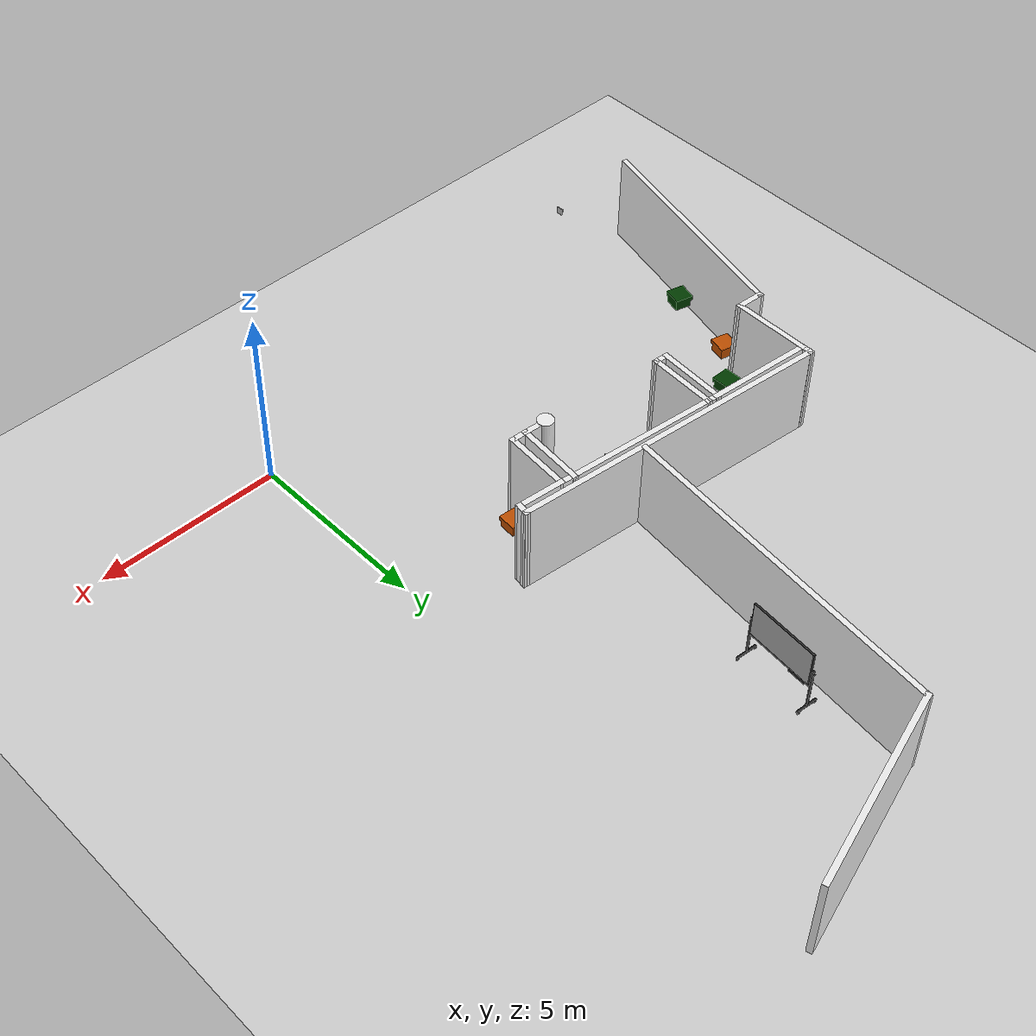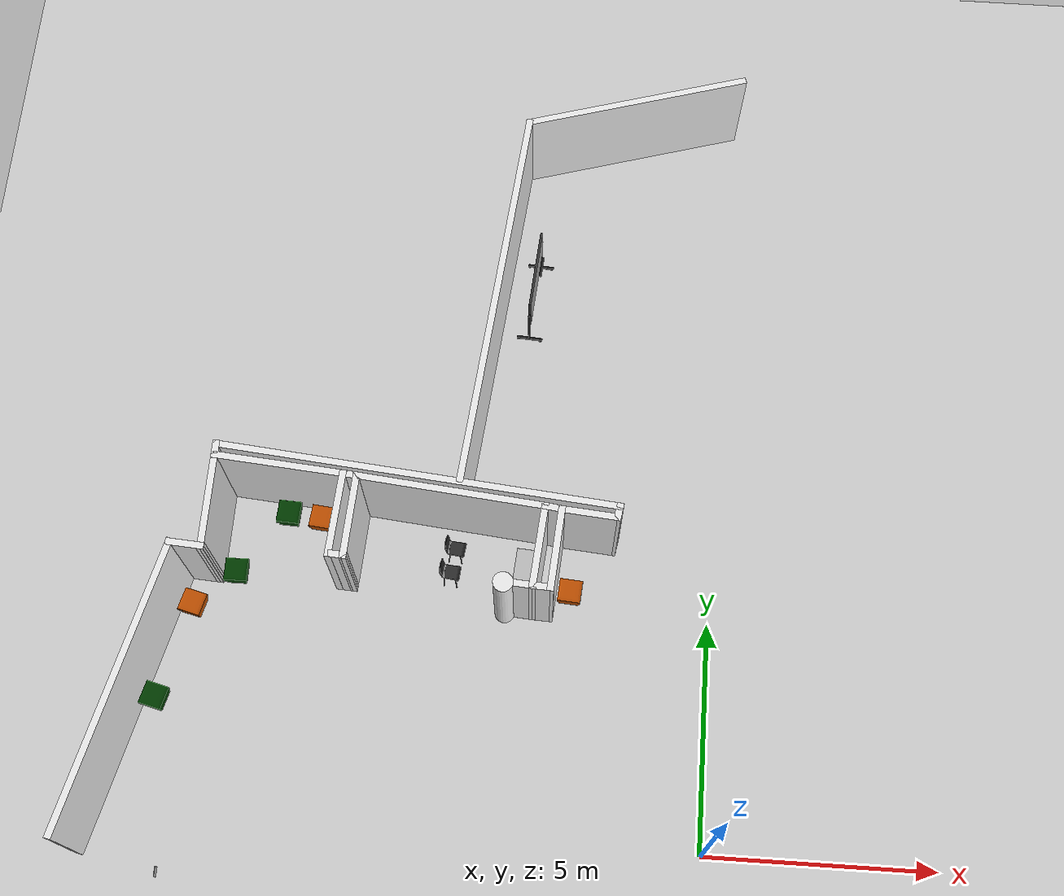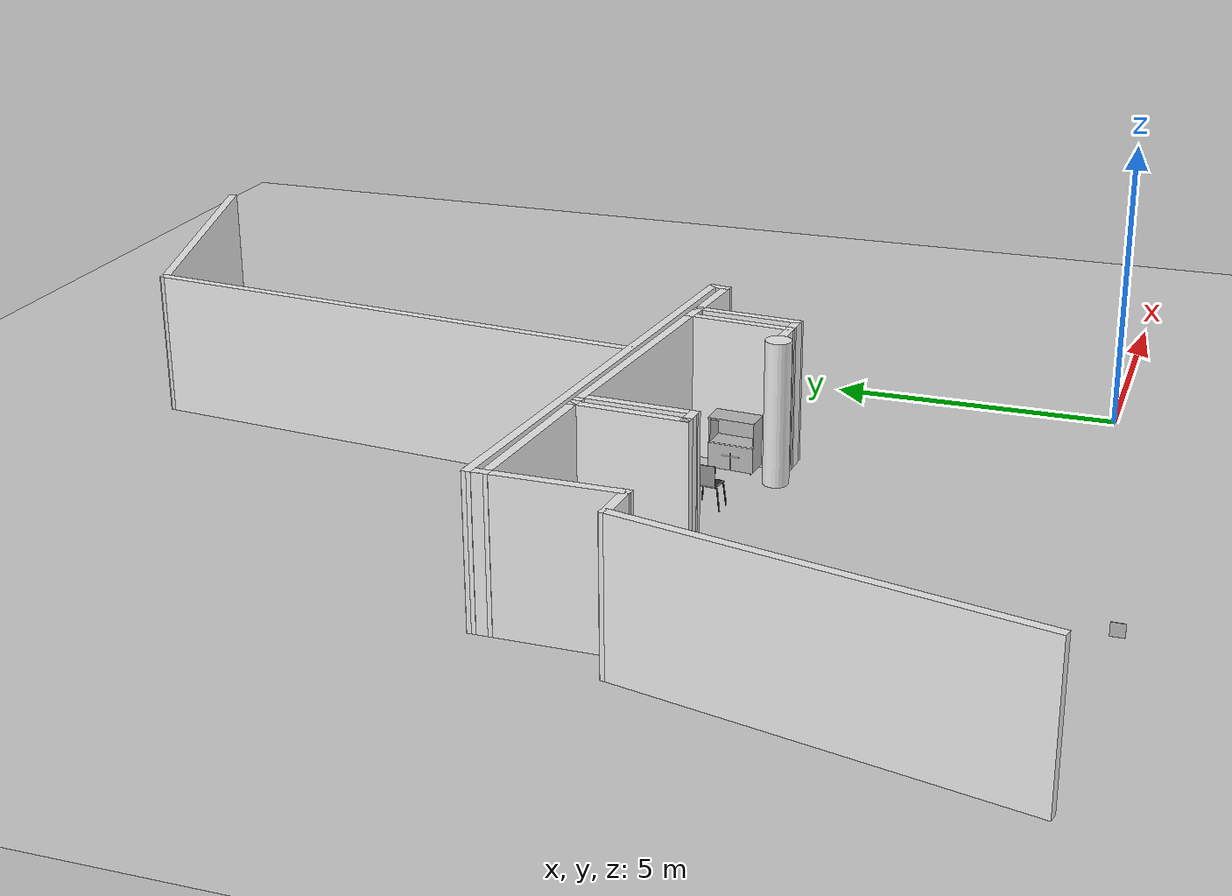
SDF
<sdf version="1.6">
 <world name="default">
  <model name="ground_plane">
   <static>1</static>
   <link name="link">
    <collision name="collision">
     <geometry><plane><normal>0 0 1</normal><size>100 100</size></plane></geometry>
     <surface><friction><ode><mu>100</mu><mu2>50</mu2></ode></friction></surface>
    </collision>
    <visual name="visual">
     <cast_shadows>0</cast_shadows>
     <geometry><plane><normal>0 0 1</normal><size>100 100</size></plane></geometry>
     <material>
      <script><uri>file://media/materials/scripts/gazebo.material</uri><name>Gazebo/Grey</name></script>
     </material>
    </visual>
   </link>
  </model>
  <model name="ucu_basic_frame.world">
   <link name="Wall_216">
    <pose>-13.0355 -1.31077 0 0 -0 1.3362</pose>
    <visual name="Wall_216_Visual">
     <pose>0 0 1.25 0 -0 0</pose>
     <geometry><box><size>6.46944 0.15 2.5</size></box></geometry>
     <material>
      <script><uri>file://media/materials/scripts/gazebo.material</uri><name>Gazebo/White</name></script>
      <ambient>1 1 1 1</ambient>
      <diffuse>1 1 1 1</diffuse>
      <specular>0 0 0 1</specular>
      <emissive>0 0 0 1</emissive>
     </material>
     <meta><layer>0</layer></meta>
    </visual>
    <collision name="Wall_216_Collision">
     <pose>0 0 1.25 0 -0 0</pose>
     <geometry><box><size>6.46944 0.15 2.5</size></box></geometry>
     <surface>
      <friction>
       <ode><mu>1</mu><mu2>1</mu2><fdir1>0 0 0</fdir1><slip1>0</slip1><slip2>0</slip2></ode>
       <torsional>
        <coefficient>1</coefficient>
        <patch_radius>0</patch_radius>
        <surface_radius>0</surface_radius>
        <use_patch_radius>1</use_patch_radius>
        <ode><slip>0</slip></ode>
       </torsional>
      </friction>
      <bounce><restitution_coefficient>0</restitution_coefficient><threshold>1e+06</threshold></bounce>
      <contact>
       <collide_without_contact>0</collide_without_contact>
       <collide_without_contact_bitmask>1</collide_without_contact_bitmask>
       <collide_bitmask>1</collide_bitmask>
       <ode>
        <soft_cfm>0</soft_cfm>
        <soft_erp>0.2</soft_erp>
        <kp>1e+13</kp>
        <kd>1</kd>
        <max_vel>0.01</max_vel>
        <min_depth>0</min_depth>
       </ode>
       <bullet>
        <split_impulse>1</split_impulse>
        <split_impulse_penetration_threshold>-0.01</split_impulse_penetration_threshold>
        <soft_cfm>0</soft_cfm>
        <soft_erp>0.2</soft_erp>
        <kp>1e+13</kp>
        <kd>1</kd>
       </bullet>
      </contact>
     </surface>
    </collision>
   </link>
   <link name="Wall_219">
    <pose>-11.9656 1.73894 0 0 0 -0.069823</pose>
    <visual name="Wall_219_Visual">
     <pose>0 0 1.25 0 -0 0</pose>
     <geometry><box><size>0.822603 0.15 2.5</size></box></geometry>
     <material>
      <script><uri>file://media/materials/scripts/gazebo.material</uri><name>Gazebo/White</name></script>
      <ambient>1 1 1 1</ambient>
      <diffuse>1 1 1 1</diffuse>
      <specular>0 0 0 1</specular>
      <emissive>0 0 0 1</emissive>
     </material>
     <meta><layer>0</layer></meta>
    </visual>
    <collision name="Wall_219_Collision">
     <pose>0 0 1.25 0 -0 0</pose>
     <geometry><box><size>0.822603 0.15 2.5</size></box></geometry>
     <surface>
      <friction>
       <ode><mu>1</mu><mu2>1</mu2><fdir1>0 0 0</fdir1><slip1>0</slip1><slip2>0</slip2></ode>
       <torsional>
        <coefficient>1</coefficient>
        <patch_radius>0</patch_radius>
        <surface_radius>0</surface_radius>
        <use_patch_radius>1</use_patch_radius>
        <ode><slip>0</slip></ode>
       </torsional>
      </friction>
      <bounce><restitution_coefficient>0</restitution_coefficient><threshold>1e+06</threshold></bounce>
      <contact>
       <collide_without_contact>0</collide_without_contact>
       <collide_without_contact_bitmask>1</collide_without_contact_bitmask>
       <collide_bitmask>1</collide_bitmask>
       <ode>
        <soft_cfm>0</soft_cfm>
        <soft_erp>0.2</soft_erp>
        <kp>1e+13</kp>
        <kd>1</kd>
        <max_vel>0.01</max_vel>
        <min_depth>0</min_depth>
       </ode>
       <bullet>
        <split_impulse>1</split_impulse>
        <split_impulse_penetration_threshold>-0.01</split_impulse_penetration_threshold>
        <soft_cfm>0</soft_cfm>
        <soft_erp>0.2</soft_erp>
        <kp>1e+13</kp>
        <kd>1</kd>
       </bullet>
      </contact>
     </surface>
    </collision>
   </link>
   <link name="Wall_235">
    <pose>-8.66541 3.50535 0 0 0 -0.094238</pose>
    <visual name="Wall_235_Visual">
     <pose>0 0 1.25 0 -0 0</pose>
     <geometry><box><size>0.419456 0.15 2.5</size></box></geometry>
     <material>
      <script><uri>file://media/materials/scripts/gazebo.material</uri><name>Gazebo/White</name></script>
      <ambient>1 1 1 1</ambient>
      <diffuse>1 1 1 1</diffuse>
      <specular>0 0 0 1</specular>
      <emissive>0 0 0 1</emissive>
     </material>
     <meta><layer>0</layer></meta>
    </visual>
    <collision name="Wall_235_Collision">
     <pose>0 0 1.25 0 -0 0</pose>
     <geometry><box><size>0.419456 0.15 2.5</size></box></geometry>
     <surface>
      <friction>
       <ode><mu>1</mu><mu2>1</mu2><fdir1>0 0 0</fdir1><slip1>0</slip1><slip2>0</slip2></ode>
       <torsional>
        <coefficient>1</coefficient>
        <patch_radius>0</patch_radius>
        <surface_radius>0</surface_radius>
        <use_patch_radius>1</use_patch_radius>
        <ode><slip>0</slip></ode>
       </torsional>
      </friction>
      <bounce><restitution_coefficient>0</restitution_coefficient><threshold>1e+06</threshold></bounce>
      <contact>
       <collide_without_contact>0</collide_without_contact>
       <collide_without_contact_bitmask>1</collide_without_contact_bitmask>
       <collide_bitmask>1</collide_bitmask>
       <ode>
        <soft_cfm>0</soft_cfm>
        <soft_erp>0.2</soft_erp>
        <kp>1e+13</kp>
        <kd>1</kd>
        <max_vel>0.01</max_vel>
        <min_depth>0</min_depth>
       </ode>
       <bullet>
        <split_impulse>1</split_impulse>
        <split_impulse_penetration_threshold>-0.01</split_impulse_penetration_threshold>
        <soft_cfm>0</soft_cfm>
        <soft_erp>0.2</soft_erp>
        <kp>1e+13</kp>
        <kd>1</kd>
       </bullet>
      </contact>
     </surface>
    </collision>
   </link>
   <link name="Wall_236">
    <pose>-6.50341 3.28586 0 0 0 -0.101636</pose>
    <visual name="Wall_236_Visual">
     <pose>0 0 1.25 0 -0 0</pose>
     <geometry><box><size>4.22679 0.15 2.5</size></box></geometry>
     <material>
      <script><uri>file://media/materials/scripts/gazebo.material</uri><name>Gazebo/White</name></script>
      <ambient>1 1 1 1</ambient>
      <diffuse>1 1 1 1</diffuse>
      <specular>0 0 0 1</specular>
      <emissive>0 0 0 1</emissive>
     </material>
     <meta><layer>0</layer></meta>
    </visual>
    <collision name="Wall_236_Collision">
     <pose>0 0 1.25 0 -0 0</pose>
     <geometry><box><size>4.22679 0.15 2.5</size></box></geometry>
     <surface>
      <friction>
       <ode><mu>1</mu><mu2>1</mu2><fdir1>0 0 0</fdir1><slip1>0</slip1><slip2>0</slip2></ode>
       <torsional>
        <coefficient>1</coefficient>
        <patch_radius>0</patch_radius>
        <surface_radius>0</surface_radius>
        <use_patch_radius>1</use_patch_radius>
        <ode><slip>0</slip></ode>
       </torsional>
      </friction>
      <bounce><restitution_coefficient>0</restitution_coefficient><threshold>1e+06</threshold></bounce>
      <contact>
       <collide_without_contact>0</collide_without_contact>
       <collide_without_contact_bitmask>1</collide_without_contact_bitmask>
       <collide_bitmask>1</collide_bitmask>
       <ode>
        <soft_cfm>0</soft_cfm>
        <soft_erp>0.2</soft_erp>
        <kp>1e+13</kp>
        <kd>1</kd>
        <max_vel>0.01</max_vel>
        <min_depth>0</min_depth>
       </ode>
       <bullet>
        <split_impulse>1</split_impulse>
        <split_impulse_penetration_threshold>-0.01</split_impulse_penetration_threshold>
        <soft_cfm>0</soft_cfm>
        <soft_erp>0.2</soft_erp>
        <kp>1e+13</kp>
        <kd>1</kd>
       </bullet>
      </contact>
     </surface>
    </collision>
   </link>
   <link name="Wall_238">
    <pose>-10.2067 3.64028 0 0 -0 3.05493</pose>
    <visual name="Wall_238_Visual">
     <pose>0 0 1.25 0 -0 0</pose>
     <geometry><box><size>2.97493 0.15 2.5</size></box></geometry>
     <material>
      <script><uri>file://media/materials/scripts/gazebo.material</uri><name>Gazebo/White</name></script>
      <ambient>1 1 1 1</ambient>
      <diffuse>1 1 1 1</diffuse>
      <specular>0 0 0 1</specular>
      <emissive>0 0 0 1</emissive>
     </material>
     <meta><layer>0</layer></meta>
    </visual>
    <collision name="Wall_238_Collision">
     <pose>0 0 1.25 0 -0 0</pose>
     <geometry><box><size>2.97493 0.15 2.5</size></box></geometry>
     <surface>
      <friction>
       <ode><mu>1</mu><mu2>1</mu2><fdir1>0 0 0</fdir1><slip1>0</slip1><slip2>0</slip2></ode>
       <torsional>
        <coefficient>1</coefficient>
        <patch_radius>0</patch_radius>
        <surface_radius>0</surface_radius>
        <use_patch_radius>1</use_patch_radius>
        <ode><slip>0</slip></ode>
       </torsional>
      </friction>
      <bounce><restitution_coefficient>0</restitution_coefficient><threshold>1e+06</threshold></bounce>
      <contact>
       <collide_without_contact>0</collide_without_contact>
       <collide_without_contact_bitmask>1</collide_without_contact_bitmask>
       <collide_bitmask>1</collide_bitmask>
       <ode>
        <soft_cfm>0</soft_cfm>
        <soft_erp>0.2</soft_erp>
        <kp>1e+13</kp>
        <kd>1</kd>
        <max_vel>0.01</max_vel>
        <min_depth>0</min_depth>
       </ode>
       <bullet>
        <split_impulse>1</split_impulse>
        <split_impulse_penetration_threshold>-0.01</split_impulse_penetration_threshold>
        <soft_cfm>0</soft_cfm>
        <soft_erp>0.2</soft_erp>
        <kp>1e+13</kp>
        <kd>1</kd>
       </bullet>
      </contact>
     </surface>
    </collision>
   </link>
   <link name="Wall_240">
    <pose>-8.88603 2.62353 0 0 0 -1.63778</pose>
    <visual name="Wall_240_Visual">
     <pose>0 0 1.25 0 -0 0</pose>
     <geometry><box><size>1.94303 0.15 2.5</size></box></geometry>
     <material>
      <script><uri>file://media/materials/scripts/gazebo.material</uri><name>Gazebo/White</name></script>
      <ambient>1 1 1 1</ambient>
      <diffuse>1 1 1 1</diffuse>
      <specular>0 0 0 1</specular>
      <emissive>0 0 0 1</emissive>
     </material>
     <meta><layer>0</layer></meta>
    </visual>
    <collision name="Wall_240_Collision">
     <pose>0 0 1.25 0 -0 0</pose>
     <geometry><box><size>1.94303 0.15 2.5</size></box></geometry>
     <surface>
      <friction>
       <ode><mu>1</mu><mu2>1</mu2><fdir1>0 0 0</fdir1><slip1>0</slip1><slip2>0</slip2></ode>
       <torsional>
        <coefficient>1</coefficient>
        <patch_radius>0</patch_radius>
        <surface_radius>0</surface_radius>
        <use_patch_radius>1</use_patch_radius>
        <ode><slip>0</slip></ode>
       </torsional>
      </friction>
      <bounce><restitution_coefficient>0</restitution_coefficient><threshold>1e+06</threshold></bounce>
      <contact>
       <collide_without_contact>0</collide_without_contact>
       <collide_without_contact_bitmask>1</collide_without_contact_bitmask>
       <collide_bitmask>1</collide_bitmask>
       <ode>
        <soft_cfm>0</soft_cfm>
        <soft_erp>0.2</soft_erp>
        <kp>1e+13</kp>
        <kd>1</kd>
        <max_vel>0.01</max_vel>
        <min_depth>0</min_depth>
       </ode>
       <bullet>
        <split_impulse>1</split_impulse>
        <split_impulse_penetration_threshold>-0.01</split_impulse_penetration_threshold>
        <soft_cfm>0</soft_cfm>
        <soft_erp>0.2</soft_erp>
        <kp>1e+13</kp>
        <kd>1</kd>
       </bullet>
      </contact>
     </surface>
    </collision>
   </link>
   <link name="Wall_242">
    <pose>-8.58067 2.60137 0 0 0 -1.62614</pose>
    <visual name="Wall_242_Visual">
     <pose>0 0 1.25 0 -0 0</pose>
     <geometry><box><size>1.93473 0.15 2.5</size></box></geometry>
     <material>
      <script><uri>file://media/materials/scripts/gazebo.material</uri><name>Gazebo/White</name></script>
      <ambient>1 1 1 1</ambient>
      <diffuse>1 1 1 1</diffuse>
      <specular>0 0 0 1</specular>
      <emissive>0 0 0 1</emissive>
     </material>
     <meta><layer>0</layer></meta>
    </visual>
    <collision name="Wall_242_Collision">
     <pose>0 0 1.25 0 -0 0</pose>
     <geometry><box><size>1.93473 0.15 2.5</size></box></geometry>
     <surface>
      <friction>
       <ode><mu>1</mu><mu2>1</mu2><fdir1>0 0 0</fdir1><slip1>0</slip1><slip2>0</slip2></ode>
       <torsional>
        <coefficient>1</coefficient>
        <patch_radius>0</patch_radius>
        <surface_radius>0</surface_radius>
        <use_patch_radius>1</use_patch_radius>
        <ode><slip>0</slip></ode>
       </torsional>
      </friction>
      <bounce><restitution_coefficient>0</restitution_coefficient><threshold>1e+06</threshold></bounce>
      <contact>
       <collide_without_contact>0</collide_without_contact>
       <collide_without_contact_bitmask>1</collide_without_contact_bitmask>
       <collide_bitmask>1</collide_bitmask>
       <ode>
        <soft_cfm>0</soft_cfm>
        <soft_erp>0.2</soft_erp>
        <kp>1e+13</kp>
        <kd>1</kd>
        <max_vel>0.01</max_vel>
        <min_depth>0</min_depth>
       </ode>
       <bullet>
        <split_impulse>1</split_impulse>
        <split_impulse_penetration_threshold>-0.01</split_impulse_penetration_threshold>
        <soft_cfm>0</soft_cfm>
        <soft_erp>0.2</soft_erp>
        <kp>1e+13</kp>
        <kd>1</kd>
       </bullet>
      </contact>
     </surface>
    </collision>
   </link>
   <link name="Wall_243">
    <pose>-8.77481 1.71955 0 0 -0 3.07623</pose>
    <visual name="Wall_243_Visual">
     <pose>0 0 1.25 0 -0 0</pose>
     <geometry><box><size>0.440136 0.15 2.5</size></box></geometry>
     <material>
      <script><uri>file://media/materials/scripts/gazebo.material</uri><name>Gazebo/White</name></script>
      <ambient>1 1 1 1</ambient>
      <diffuse>1 1 1 1</diffuse>
      <specular>0 0 0 1</specular>
      <emissive>0 0 0 1</emissive>
     </material>
     <meta><layer>0</layer></meta>
    </visual>
    <collision name="Wall_243_Collision">
     <pose>0 0 1.25 0 -0 0</pose>
     <geometry><box><size>0.440136 0.15 2.5</size></box></geometry>
     <surface>
      <friction>
       <ode><mu>1</mu><mu2>1</mu2><fdir1>0 0 0</fdir1><slip1>0</slip1><slip2>0</slip2></ode>
       <torsional>
        <coefficient>1</coefficient>
        <patch_radius>0</patch_radius>
        <surface_radius>0</surface_radius>
        <use_patch_radius>1</use_patch_radius>
        <ode><slip>0</slip></ode>
       </torsional>
      </friction>
      <bounce><restitution_coefficient>0</restitution_coefficient><threshold>1e+06</threshold></bounce>
      <contact>
       <collide_without_contact>0</collide_without_contact>
       <collide_without_contact_bitmask>1</collide_without_contact_bitmask>
       <collide_bitmask>1</collide_bitmask>
       <ode>
        <soft_cfm>0</soft_cfm>
        <soft_erp>0.2</soft_erp>
        <kp>1e+13</kp>
        <kd>1</kd>
        <max_vel>0.01</max_vel>
        <min_depth>0</min_depth>
       </ode>
       <bullet>
        <split_impulse>1</split_impulse>
        <split_impulse_penetration_threshold>-0.01</split_impulse_penetration_threshold>
        <soft_cfm>0</soft_cfm>
        <soft_erp>0.2</soft_erp>
        <kp>1e+13</kp>
        <kd>1</kd>
       </bullet>
      </contact>
     </surface>
    </collision>
   </link>
   <link name="Wall_246">
    <pose>-4.29722 3.05489 0 0 0 -0.134585</pose>
    <visual name="Wall_246_Visual">
     <pose>0 0 1.25 0 -0 0</pose>
     <geometry><box><size>0.509875 0.15 2.5</size></box></geometry>
     <material>
      <script><uri>file://media/materials/scripts/gazebo.material</uri><name>Gazebo/White</name></script>
      <ambient>1 1 1 1</ambient>
      <diffuse>1 1 1 1</diffuse>
      <specular>0 0 0 1</specular>
      <emissive>0 0 0 1</emissive>
     </material>
     <meta><layer>0</layer></meta>
    </visual>
    <collision name="Wall_246_Collision">
     <pose>0 0 1.25 0 -0 0</pose>
     <geometry><box><size>0.509875 0.15 2.5</size></box></geometry>
     <surface>
      <friction>
       <ode><mu>1</mu><mu2>1</mu2><fdir1>0 0 0</fdir1><slip1>0</slip1><slip2>0</slip2></ode>
       <torsional>
        <coefficient>1</coefficient>
        <patch_radius>0</patch_radius>
        <surface_radius>0</surface_radius>
        <use_patch_radius>1</use_patch_radius>
        <ode><slip>0</slip></ode>
       </torsional>
      </friction>
      <bounce><restitution_coefficient>0</restitution_coefficient><threshold>1e+06</threshold></bounce>
      <contact>
       <collide_without_contact>0</collide_without_contact>
       <collide_without_contact_bitmask>1</collide_without_contact_bitmask>
       <collide_bitmask>1</collide_bitmask>
       <ode>
        <soft_cfm>0</soft_cfm>
        <soft_erp>0.2</soft_erp>
        <kp>1e+13</kp>
        <kd>1</kd>
        <max_vel>0.01</max_vel>
        <min_depth>0</min_depth>
       </ode>
       <bullet>
        <split_impulse>1</split_impulse>
        <split_impulse_penetration_threshold>-0.01</split_impulse_penetration_threshold>
        <soft_cfm>0</soft_cfm>
        <soft_erp>0.2</soft_erp>
        <kp>1e+13</kp>
        <kd>1</kd>
       </bullet>
      </contact>
     </surface>
    </collision>
   </link>
   <link name="Wall_247">
    <pose>-3.52661 2.97846 0 0 0 -0.088046</pose>
    <visual name="Wall_247_Visual">
     <pose>0 0 1.25 0 -0 0</pose>
     <geometry><box><size>1.33921 0.15 2.5</size></box></geometry>
     <material>
      <script><uri>file://media/materials/scripts/gazebo.material</uri><name>Gazebo/White</name></script>
      <ambient>1 1 1 1</ambient>
      <diffuse>1 1 1 1</diffuse>
      <specular>0 0 0 1</specular>
      <emissive>0 0 0 1</emissive>
     </material>
     <meta><layer>0</layer></meta>
    </visual>
    <collision name="Wall_247_Collision">
     <pose>0 0 1.25 0 -0 0</pose>
     <geometry><box><size>1.33921 0.15 2.5</size></box></geometry>
     <surface>
      <friction>
       <ode><mu>1</mu><mu2>1</mu2><fdir1>0 0 0</fdir1><slip1>0</slip1><slip2>0</slip2></ode>
       <torsional>
        <coefficient>1</coefficient>
        <patch_radius>0</patch_radius>
        <surface_radius>0</surface_radius>
        <use_patch_radius>1</use_patch_radius>
        <ode><slip>0</slip></ode>
       </torsional>
      </friction>
      <bounce><restitution_coefficient>0</restitution_coefficient><threshold>1e+06</threshold></bounce>
      <contact>
       <collide_without_contact>0</collide_without_contact>
       <collide_without_contact_bitmask>1</collide_without_contact_bitmask>
       <collide_bitmask>1</collide_bitmask>
       <ode>
        <soft_cfm>0</soft_cfm>
        <soft_erp>0.2</soft_erp>
        <kp>1e+13</kp>
        <kd>1</kd>
        <max_vel>0.01</max_vel>
        <min_depth>0</min_depth>
       </ode>
       <bullet>
        <split_impulse>1</split_impulse>
        <split_impulse_penetration_threshold>-0.01</split_impulse_penetration_threshold>
        <soft_cfm>0</soft_cfm>
        <soft_erp>0.2</soft_erp>
        <kp>1e+13</kp>
        <kd>1</kd>
       </bullet>
      </contact>
     </surface>
    </collision>
   </link>
   <link name="Wall_248">
    <pose>-2.91396 3.04829 0 0 -0 1.40565</pose>
    <visual name="Wall_248_Visual">
     <pose>0 0 1.25 0 -0 0</pose>
     <geometry><box><size>0.397585 0.15 2.5</size></box></geometry>
     <material>
      <script><uri>file://media/materials/scripts/gazebo.material</uri><name>Gazebo/White</name></script>
      <ambient>1 1 1 1</ambient>
      <diffuse>1 1 1 1</diffuse>
      <specular>0 0 0 1</specular>
      <emissive>0 0 0 1</emissive>
     </material>
     <meta><layer>0</layer></meta>
    </visual>
    <collision name="Wall_248_Collision">
     <pose>0 0 1.25 0 -0 0</pose>
     <geometry><box><size>0.397585 0.15 2.5</size></box></geometry>
     <surface>
      <friction>
       <ode><mu>1</mu><mu2>1</mu2><fdir1>0 0 0</fdir1><slip1>0</slip1><slip2>0</slip2></ode>
       <torsional>
        <coefficient>1</coefficient>
        <patch_radius>0</patch_radius>
        <surface_radius>0</surface_radius>
        <use_patch_radius>1</use_patch_radius>
        <ode><slip>0</slip></ode>
       </torsional>
      </friction>
      <bounce><restitution_coefficient>0</restitution_coefficient><threshold>1e+06</threshold></bounce>
      <contact>
       <collide_without_contact>0</collide_without_contact>
       <collide_without_contact_bitmask>1</collide_without_contact_bitmask>
       <collide_bitmask>1</collide_bitmask>
       <ode>
        <soft_cfm>0</soft_cfm>
        <soft_erp>0.2</soft_erp>
        <kp>1e+13</kp>
        <kd>1</kd>
        <max_vel>0.01</max_vel>
        <min_depth>0</min_depth>
       </ode>
       <bullet>
        <split_impulse>1</split_impulse>
        <split_impulse_penetration_threshold>-0.01</split_impulse_penetration_threshold>
        <soft_cfm>0</soft_cfm>
        <soft_erp>0.2</soft_erp>
        <kp>1e+13</kp>
        <kd>1</kd>
       </bullet>
      </contact>
     </surface>
    </collision>
   </link>
   <link name="Wall_250">
    <pose>-4.55256 2.20116 0 0 0 -1.65832</pose>
    <visual name="Wall_250_Visual">
     <pose>0 0 1.25 0 -0 0</pose>
     <geometry><box><size>1.91251 0.15 2.5</size></box></geometry>
     <material>
      <script><uri>file://media/materials/scripts/gazebo.material</uri><name>Gazebo/White</name></script>
      <ambient>1 1 1 1</ambient>
      <diffuse>1 1 1 1</diffuse>
      <specular>0 0 0 1</specular>
      <emissive>0 0 0 1</emissive>
     </material>
     <meta><layer>0</layer></meta>
    </visual>
    <collision name="Wall_250_Collision">
     <pose>0 0 1.25 0 -0 0</pose>
     <geometry><box><size>1.91251 0.15 2.5</size></box></geometry>
     <surface>
      <friction>
       <ode><mu>1</mu><mu2>1</mu2><fdir1>0 0 0</fdir1><slip1>0</slip1><slip2>0</slip2></ode>
       <torsional>
        <coefficient>1</coefficient>
        <patch_radius>0</patch_radius>
        <surface_radius>0</surface_radius>
        <use_patch_radius>1</use_patch_radius>
        <ode><slip>0</slip></ode>
       </torsional>
      </friction>
      <bounce><restitution_coefficient>0</restitution_coefficient><threshold>1e+06</threshold></bounce>
      <contact>
       <collide_without_contact>0</collide_without_contact>
       <collide_without_contact_bitmask>1</collide_without_contact_bitmask>
       <collide_bitmask>1</collide_bitmask>
       <ode>
        <soft_cfm>0</soft_cfm>
        <soft_erp>0.2</soft_erp>
        <kp>1e+13</kp>
        <kd>1</kd>
        <max_vel>0.01</max_vel>
        <min_depth>0</min_depth>
       </ode>
       <bullet>
        <split_impulse>1</split_impulse>
        <split_impulse_penetration_threshold>-0.01</split_impulse_penetration_threshold>
        <soft_cfm>0</soft_cfm>
        <soft_erp>0.2</soft_erp>
        <kp>1e+13</kp>
        <kd>1</kd>
       </bullet>
      </contact>
     </surface>
    </collision>
   </link>
   <link name="Wall_251">
    <pose>-4.44062 1.31279 0 0 0 -0.055434</pose>
    <visual name="Wall_251_Visual">
     <pose>0 0 1.25 0 -0 0</pose>
     <geometry><box><size>0.528652 0.15 2.5</size></box></geometry>
     <material>
      <script><uri>file://media/materials/scripts/gazebo.material</uri><name>Gazebo/White</name></script>
      <ambient>1 1 1 1</ambient>
      <diffuse>1 1 1 1</diffuse>
      <specular>0 0 0 1</specular>
      <emissive>0 0 0 1</emissive>
     </material>
     <meta><layer>0</layer></meta>
    </visual>
    <collision name="Wall_251_Collision">
     <pose>0 0 1.25 0 -0 0</pose>
     <geometry><box><size>0.528652 0.15 2.5</size></box></geometry>
     <surface>
      <friction>
       <ode><mu>1</mu><mu2>1</mu2><fdir1>0 0 0</fdir1><slip1>0</slip1><slip2>0</slip2></ode>
       <torsional>
        <coefficient>1</coefficient>
        <patch_radius>0</patch_radius>
        <surface_radius>0</surface_radius>
        <use_patch_radius>1</use_patch_radius>
        <ode><slip>0</slip></ode>
       </torsional>
      </friction>
      <bounce><restitution_coefficient>0</restitution_coefficient><threshold>1e+06</threshold></bounce>
      <contact>
       <collide_without_contact>0</collide_without_contact>
       <collide_without_contact_bitmask>1</collide_without_contact_bitmask>
       <collide_bitmask>1</collide_bitmask>
       <ode>
        <soft_cfm>0</soft_cfm>
        <soft_erp>0.2</soft_erp>
        <kp>1e+13</kp>
        <kd>1</kd>
        <max_vel>0.01</max_vel>
        <min_depth>0</min_depth>
       </ode>
       <bullet>
        <split_impulse>1</split_impulse>
        <split_impulse_penetration_threshold>-0.01</split_impulse_penetration_threshold>
        <soft_cfm>0</soft_cfm>
        <soft_erp>0.2</soft_erp>
        <kp>1e+13</kp>
        <kd>1</kd>
       </bullet>
      </contact>
     </surface>
    </collision>
   </link>
   <link name="Wall_252">
    <pose>-4.18528 2.16653 0 0 -0 1.49415</pose>
    <visual name="Wall_252_Visual">
     <pose>0 0 1.25 0 -0 0</pose>
     <geometry><box><size>1.88354 0.15 2.5</size></box></geometry>
     <material>
      <script><uri>file://media/materials/scripts/gazebo.material</uri><name>Gazebo/White</name></script>
      <ambient>1 1 1 1</ambient>
      <diffuse>1 1 1 1</diffuse>
      <specular>0 0 0 1</specular>
      <emissive>0 0 0 1</emissive>
     </material>
     <meta><layer>0</layer></meta>
    </visual>
    <collision name="Wall_252_Collision">
     <pose>0 0 1.25 0 -0 0</pose>
     <geometry><box><size>1.88354 0.15 2.5</size></box></geometry>
     <surface>
      <friction>
       <ode><mu>1</mu><mu2>1</mu2><fdir1>0 0 0</fdir1><slip1>0</slip1><slip2>0</slip2></ode>
       <torsional>
        <coefficient>1</coefficient>
        <patch_radius>0</patch_radius>
        <surface_radius>0</surface_radius>
        <use_patch_radius>1</use_patch_radius>
        <ode><slip>0</slip></ode>
       </torsional>
      </friction>
      <bounce><restitution_coefficient>0</restitution_coefficient><threshold>1e+06</threshold></bounce>
      <contact>
       <collide_without_contact>0</collide_without_contact>
       <collide_without_contact_bitmask>1</collide_without_contact_bitmask>
       <collide_bitmask>1</collide_bitmask>
       <ode>
        <soft_cfm>0</soft_cfm>
        <soft_erp>0.2</soft_erp>
        <kp>1e+13</kp>
        <kd>1</kd>
        <max_vel>0.01</max_vel>
        <min_depth>0</min_depth>
       </ode>
       <bullet>
        <split_impulse>1</split_impulse>
        <split_impulse_penetration_threshold>-0.01</split_impulse_penetration_threshold>
        <soft_cfm>0</soft_cfm>
        <soft_erp>0.2</soft_erp>
        <kp>1e+13</kp>
        <kd>1</kd>
       </bullet>
      </contact>
     </surface>
    </collision>
   </link>
   <link name="Wall_254">
    <pose>-4.91992 1.34515 0 0 -0 3.06638</pose>
    <visual name="Wall_254_Visual">
     <pose>0 0 1.25 0 -0 0</pose>
     <geometry><box><size>0.732308 0.15 2.5</size></box></geometry>
     <material>
      <script><uri>file://media/materials/scripts/gazebo.material</uri><name>Gazebo/White</name></script>
      <ambient>1 1 1 1</ambient>
      <diffuse>1 1 1 1</diffuse>
      <specular>0 0 0 1</specular>
      <emissive>0 0 0 1</emissive>
     </material>
     <meta><layer>0</layer></meta>
    </visual>
    <collision name="Wall_254_Collision">
     <pose>0 0 1.25 0 -0 0</pose>
     <geometry><box><size>0.732308 0.15 2.5</size></box></geometry>
     <surface>
      <friction>
       <ode><mu>1</mu><mu2>1</mu2><fdir1>0 0 0</fdir1><slip1>0</slip1><slip2>0</slip2></ode>
       <torsional>
        <coefficient>1</coefficient>
        <patch_radius>0</patch_radius>
        <surface_radius>0</surface_radius>
        <use_patch_radius>1</use_patch_radius>
        <ode><slip>0</slip></ode>
       </torsional>
      </friction>
      <bounce><restitution_coefficient>0</restitution_coefficient><threshold>1e+06</threshold></bounce>
      <contact>
       <collide_without_contact>0</collide_without_contact>
       <collide_without_contact_bitmask>1</collide_without_contact_bitmask>
       <collide_bitmask>1</collide_bitmask>
       <ode>
        <soft_cfm>0</soft_cfm>
        <soft_erp>0.2</soft_erp>
        <kp>1e+13</kp>
        <kd>1</kd>
        <max_vel>0.01</max_vel>
        <min_depth>0</min_depth>
       </ode>
       <bullet>
        <split_impulse>1</split_impulse>
        <split_impulse_penetration_threshold>-0.01</split_impulse_penetration_threshold>
        <soft_cfm>0</soft_cfm>
        <soft_erp>0.2</soft_erp>
        <kp>1e+13</kp>
        <kd>1</kd>
       </bullet>
      </contact>
     </surface>
    </collision>
   </link>
   <link name="Wall_260">
    <pose>-7.25327 3.59269 0 0 -0 3.04503</pose>
    <visual name="Wall_260_Visual">
     <pose>0 0 1.25 0 -0 0</pose>
     <geometry><box><size>8.91013 0.15 2.5</size></box></geometry>
     <material>
      <script><uri>file://media/materials/scripts/gazebo.material</uri><name>Gazebo/White</name></script>
      <ambient>1 1 1 1</ambient>
      <diffuse>1 1 1 1</diffuse>
      <specular>0 0 0 1</specular>
      <emissive>0 0 0 1</emissive>
     </material>
     <meta><layer>0</layer></meta>
    </visual>
    <collision name="Wall_260_Collision">
     <pose>0 0 1.25 0 -0 0</pose>
     <geometry><box><size>8.91013 0.15 2.5</size></box></geometry>
     <surface>
      <friction>
       <ode><mu>1</mu><mu2>1</mu2><fdir1>0 0 0</fdir1><slip1>0</slip1><slip2>0</slip2></ode>
       <torsional>
        <coefficient>1</coefficient>
        <patch_radius>0</patch_radius>
        <surface_radius>0</surface_radius>
        <use_patch_radius>1</use_patch_radius>
        <ode><slip>0</slip></ode>
       </torsional>
      </friction>
      <bounce><restitution_coefficient>0</restitution_coefficient><threshold>1e+06</threshold></bounce>
      <contact>
       <collide_without_contact>0</collide_without_contact>
       <collide_without_contact_bitmask>1</collide_without_contact_bitmask>
       <collide_bitmask>1</collide_bitmask>
       <ode>
        <soft_cfm>0</soft_cfm>
        <soft_erp>0.2</soft_erp>
        <kp>1e+13</kp>
        <kd>1</kd>
        <max_vel>0.01</max_vel>
        <min_depth>0</min_depth>
       </ode>
       <bullet>
        <split_impulse>1</split_impulse>
        <split_impulse_penetration_threshold>-0.01</split_impulse_penetration_threshold>
        <soft_cfm>0</soft_cfm>
        <soft_erp>0.2</soft_erp>
        <kp>1e+13</kp>
        <kd>1</kd>
       </bullet>
      </contact>
     </surface>
    </collision>
   </link>
   <link name="Wall_317">
    <pose>-5.88136 8.00561 0 0 0 -1.6704</pose>
    <visual name="Wall_317_Visual">
     <pose>0 0 1.25 0 -0 0</pose>
     <geometry><box><size>9.08373 0.15 2.5</size></box></geometry>
     <material>
      <script><uri>file://media/materials/scripts/gazebo.material</uri><name>Gazebo/White</name></script>
      <ambient>1 1 1 1</ambient>
      <diffuse>1 1 1 1</diffuse>
      <specular>0 0 0 1</specular>
      <emissive>0 0 0 1</emissive>
     </material>
     <meta><layer>0</layer></meta>
    </visual>
    <collision name="Wall_317_Collision">
     <pose>0 0 1.25 0 -0 0</pose>
     <geometry><box><size>9.08373 0.15 2.5</size></box></geometry>
     <surface>
      <friction>
       <ode><mu>1</mu><mu2>1</mu2><fdir1>0 0 0</fdir1><slip1>0</slip1><slip2>0</slip2></ode>
       <torsional>
        <coefficient>1</coefficient>
        <patch_radius>0</patch_radius>
        <surface_radius>0</surface_radius>
        <use_patch_radius>1</use_patch_radius>
        <ode><slip>0</slip></ode>
       </torsional>
      </friction>
      <bounce><restitution_coefficient>0</restitution_coefficient><threshold>1e+06</threshold></bounce>
      <contact>
       <collide_without_contact>0</collide_without_contact>
       <collide_without_contact_bitmask>1</collide_without_contact_bitmask>
       <collide_bitmask>1</collide_bitmask>
       <ode>
        <soft_cfm>0</soft_cfm>
        <soft_erp>0.2</soft_erp>
        <kp>1e+13</kp>
        <kd>1</kd>
        <max_vel>0.01</max_vel>
        <min_depth>0</min_depth>
       </ode>
       <bullet>
        <split_impulse>1</split_impulse>
        <split_impulse_penetration_threshold>-0.01</split_impulse_penetration_threshold>
        <soft_cfm>0</soft_cfm>
        <soft_erp>0.2</soft_erp>
        <kp>1e+13</kp>
        <kd>1</kd>
       </bullet>
      </contact>
     </surface>
    </collision>
   </link>
   <link name="Wall_319">
    <pose>-2.97852 13.1783 0 0 -0 0.287873</pose>
    <visual name="Wall_319_Visual">
     <pose>0 0 1.25 0 -0 0</pose>
     <geometry><box><size>5.27832 0.15 2.5</size></box></geometry>
     <material>
      <script><uri>file://media/materials/scripts/gazebo.material</uri><name>Gazebo/White</name></script>
      <ambient>1 1 1 1</ambient>
      <diffuse>1 1 1 1</diffuse>
      <specular>0 0 0 1</specular>
      <emissive>0 0 0 1</emissive>
     </material>
     <meta><layer>0</layer></meta>
    </visual>
    <collision name="Wall_319_Collision">
     <pose>0 0 1.25 0 -0 0</pose>
     <geometry><box><size>5.27832 0.15 2.5</size></box></geometry>
     <surface>
      <friction>
       <ode><mu>1</mu><mu2>1</mu2><fdir1>0 0 0</fdir1><slip1>0</slip1><slip2>0</slip2></ode>
       <torsional>
        <coefficient>1</coefficient>
        <patch_radius>0</patch_radius>
        <surface_radius>0</surface_radius>
        <use_patch_radius>1</use_patch_radius>
        <ode><slip>0</slip></ode>
       </torsional>
      </friction>
      <bounce><restitution_coefficient>0</restitution_coefficient><threshold>1e+06</threshold></bounce>
      <contact>
       <collide_without_contact>0</collide_without_contact>
       <collide_without_contact_bitmask>1</collide_without_contact_bitmask>
       <collide_bitmask>1</collide_bitmask>
       <ode>
        <soft_cfm>0</soft_cfm>
        <soft_erp>0.2</soft_erp>
        <kp>1e+13</kp>
        <kd>1</kd>
        <max_vel>0.01</max_vel>
        <min_depth>0</min_depth>
       </ode>
       <bullet>
        <split_impulse>1</split_impulse>
        <split_impulse_penetration_threshold>-0.01</split_impulse_penetration_threshold>
        <soft_cfm>0</soft_cfm>
        <soft_erp>0.2</soft_erp>
        <kp>1e+13</kp>
        <kd>1</kd>
       </bullet>
      </contact>
     </surface>
    </collision>
   </link>
   <link name="Wall_328">
    <pose>-11.622 2.739 0 0 -0 1.56287</pose>
    <inertial>
     <mass>1</mass>
     <inertia><ixx>1</ixx><ixy>0</ixy><ixz>0</ixz><iyy>1</iyy><iyz>0</iyz><izz>1</izz></inertia>
    </inertial>
    <visual name="Wall_328_Visual">
     <pose>0 0 1.25 0 -0 0</pose>
     <geometry><box><size>2.19711 0.15 2.5</size></box></geometry>
     <material>
      <script><uri>file://media/materials/scripts/gazebo.material</uri><name>Gazebo/White</name></script>
      <ambient>1 1 1 1</ambient>
      <diffuse>1 1 1 1</diffuse>
      <specular>0 0 0 1</specular>
      <emissive>0 0 0 1</emissive>
      <shader type="vertex"><normal_map>__default__</normal_map></shader>
     </material>
     <meta><layer>0</layer></meta>
    </visual>
    <collision name="Wall_328_Collision">
     <pose>0 0 1.25 0 -0 0</pose>
     <geometry><box><size>2.19711 0.15 2.5</size></box></geometry>
     <surface>
      <friction>
       <ode><mu>1</mu><mu2>1</mu2><fdir1>0 0 0</fdir1><slip1>0</slip1><slip2>0</slip2></ode>
       <torsional>
        <coefficient>1</coefficient>
        <patch_radius>0</patch_radius>
        <surface_radius>0</surface_radius>
        <use_patch_radius>1</use_patch_radius>
        <ode><slip>0</slip></ode>
       </torsional>
      </friction>
      <bounce><restitution_coefficient>0</restitution_coefficient><threshold>1e+06</threshold></bounce>
      <contact>
       <collide_without_contact>0</collide_without_contact>
       <collide_without_contact_bitmask>1</collide_without_contact_bitmask>
       <collide_bitmask>1</collide_bitmask>
       <ode>
        <soft_cfm>0</soft_cfm>
        <soft_erp>0.2</soft_erp>
        <kp>1e+13</kp>
        <kd>1</kd>
        <max_vel>0.01</max_vel>
        <min_depth>0</min_depth>
       </ode>
       <bullet>
        <split_impulse>1</split_impulse>
        <split_impulse_penetration_threshold>-0.01</split_impulse_penetration_threshold>
        <soft_cfm>0</soft_cfm>
        <soft_erp>0.2</soft_erp>
        <kp>1e+13</kp>
        <kd>1</kd>
       </bullet>
      </contact>
     </surface>
    </collision>
   </link>
   <link name="Wall_329">
    <pose>-11.6134 3.88876 0 0 -0 1.56703</pose>
    <visual name="Wall_329_Visual">
     <pose>0 0 1.25 0 -0 0</pose>
     <geometry><box><size>0.402461 0.15 2.5</size></box></geometry>
     <material>
      <script><uri>file://media/materials/scripts/gazebo.material</uri><name>Gazebo/White</name></script>
      <ambient>1 1 1 1</ambient>
      <diffuse>1 1 1 1</diffuse>
      <specular>0 0 0 1</specular>
      <emissive>0 0 0 1</emissive>
     </material>
     <meta><layer>0</layer></meta>
    </visual>
    <collision name="Wall_329_Collision">
     <pose>0 0 1.25 0 -0 0</pose>
     <geometry><box><size>0.402461 0.15 2.5</size></box></geometry>
     <surface>
      <friction>
       <ode><mu>1</mu><mu2>1</mu2><fdir1>0 0 0</fdir1><slip1>0</slip1><slip2>0</slip2></ode>
       <torsional>
        <coefficient>1</coefficient>
        <patch_radius>0</patch_radius>
        <surface_radius>0</surface_radius>
        <use_patch_radius>1</use_patch_radius>
        <ode><slip>0</slip></ode>
       </torsional>
      </friction>
      <bounce><restitution_coefficient>0</restitution_coefficient><threshold>1e+06</threshold></bounce>
      <contact>
       <collide_without_contact>0</collide_without_contact>
       <collide_without_contact_bitmask>1</collide_without_contact_bitmask>
       <collide_bitmask>1</collide_bitmask>
       <ode>
        <soft_cfm>0</soft_cfm>
        <soft_erp>0.2</soft_erp>
        <kp>1e+13</kp>
        <kd>1</kd>
        <max_vel>0.01</max_vel>
        <min_depth>0</min_depth>
       </ode>
       <bullet>
        <split_impulse>1</split_impulse>
        <split_impulse_penetration_threshold>-0.01</split_impulse_penetration_threshold>
        <soft_cfm>0</soft_cfm>
        <soft_erp>0.2</soft_erp>
        <kp>1e+13</kp>
        <kd>1</kd>
       </bullet>
      </contact>
     </surface>
    </collision>
   </link>
   <link name="link_0">
    <pose>-5.2461 1.3502 1.26135 0 -0 0</pose>
    <inertial>
     <mass>1</mass>
     <inertia><ixx>0.145833</ixx><ixy>0</ixy><ixz>0</ixz><iyy>0.145833</iyy><iyz>0</iyz><izz>0.125</izz></inertia>
     <pose>0 0 1.25 0 -0 0</pose>
    </inertial>
    <visual name="visual">
     <geometry><cylinder><radius>0.22</radius><length>2.5</length></cylinder></geometry>
     <material>
      <lighting>1</lighting>
      <script><uri>file://media/materials/scripts/gazebo.material</uri><name>Gazebo/White</name></script>
      <ambient>1 1 1 1</ambient>
      <diffuse>1 1 1 1</diffuse>
      <specular>0 0 0 1</specular>
      <emissive>0 0 0 1</emissive>
      <shader type="vertex"><normal_map>__default__</normal_map></shader>
     </material>
    </visual>
    <collision name="collision">
     <geometry><cylinder><radius>0.22</radius><length>2.5</length></cylinder></geometry>
     <surface>
      <friction>
       <ode><mu>1</mu><mu2>1</mu2><fdir1>0 0 0</fdir1><slip1>0</slip1><slip2>0</slip2></ode>
       <torsional>
        <coefficient>1</coefficient>
        <patch_radius>0</patch_radius>
        <surface_radius>0</surface_radius>
        <use_patch_radius>1</use_patch_radius>
        <ode><slip>0</slip></ode>
       </torsional>
      </friction>
      <bounce><restitution_coefficient>0</restitution_coefficient><threshold>1e+06</threshold></bounce>
      <contact>
       <collide_without_contact>0</collide_without_contact>
       <collide_without_contact_bitmask>1</collide_without_contact_bitmask>
       <collide_bitmask>1</collide_bitmask>
       <ode>
        <soft_cfm>0</soft_cfm>
        <soft_erp>0.2</soft_erp>
        <kp>1e+13</kp>
        <kd>1</kd>
        <max_vel>0.01</max_vel>
        <min_depth>0</min_depth>
       </ode>
       <bullet>
        <split_impulse>1</split_impulse>
        <split_impulse_penetration_threshold>-0.01</split_impulse_penetration_threshold>
        <soft_cfm>0</soft_cfm>
        <soft_erp>0.2</soft_erp>
        <kp>1e+13</kp>
        <kd>1</kd>
       </bullet>
      </contact>
     </surface>
    </collision>
   </link>
   <static>1</static>
   <pose>0.7577 3.6363 0 0 -0 0</pose>
  </model>
  <include>
   <uri>model://robert_gazebo/models/locker_008</uri>
   <name>locker_014</name>
   <pose>-4.09 5.8 0.45 0 0 -1.65</pose>
  </include>
  <include>
   <uri>model://robert_gazebo/models/puffy/green</uri>
   <name>puffy_green_1</name>
   <pose>-10.5 5.5 0.2 0 0 0</pose>
  </include>
  <include>
   <uri>model://robert_gazebo/models/puffy/orange</uri>
   <name>puffy_orange_1</name>
   <pose>-8.74 6.85 0.2 0 0 -0.1</pose>
  </include>
  <include>
   <uri>model://robert_gazebo/models/soft_armchair/green</uri>
   <name>soft_armchair_green_3</name>
   <pose>-9.46 6.86 0.38 0 0 3.09</pose>
  </include>
  <include>
   <uri>model://robert_gazebo/models/soft_armchair/green</uri>
   <name>soft_armchair_green_7</name>
   <pose>-11.86 2.54 0.38 0 0 -1.82</pose>
  </include>
  <include>
   <uri>model://robert_gazebo/models/soft_armchair/orange</uri>
   <name>soft_armchair_orange_6</name>
   <pose>-11.32 4.65 0.38 0 0 -1.82</pose>
  </include>
  <include>
   <uri>model://robert_gazebo/models/soft_armchair/orange</uri>
   <name>soft_armchair_orange_7</name>
   <pose>-3.07 5.45 0.38 0 0 -1.65</pose>
  </include>
  <include>
   <uri>model://robert_gazebo/models/classroom_chair_grey</uri>
   <name>classroom_chair_014_1</name>
   <pose>-5.66 6.28 0.445361 0 0 1.45256</pose>
  </include>
  <include>
   <uri>model://robert_gazebo/models/classroom_chair_grey</uri>
   <name>classroom_chair_014_2</name>
   <pose>-5.73 5.73 0.445361 0 0 1.47</pose>
  </include>
  <include>
   <uri>model://robert_gazebo/models/board_stand</uri>
   <name>board_lectorium</name>
   <pose>-4.30445 12.6412 1.2483 0.000425 -0.002923 -1.65138</pose>
  </include>
  <include>
   <uri>model://robert_gazebo/models/qr/it-space_2</uri>
   <name>qr_it-space_2</name>
   <pose>-11.02 -1.22 1.6 0 0 1.57</pose>
  </include>
 </world>
</sdf>
